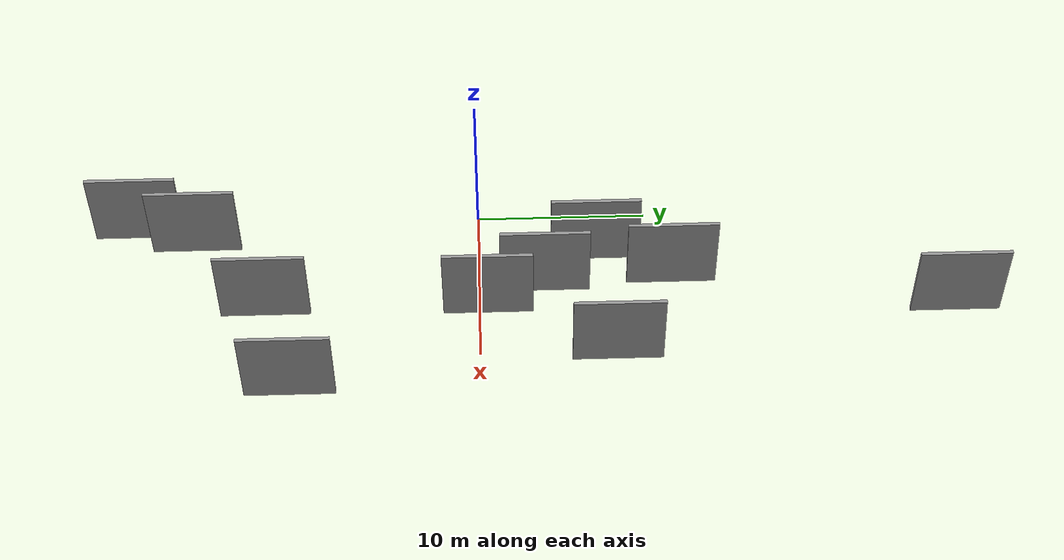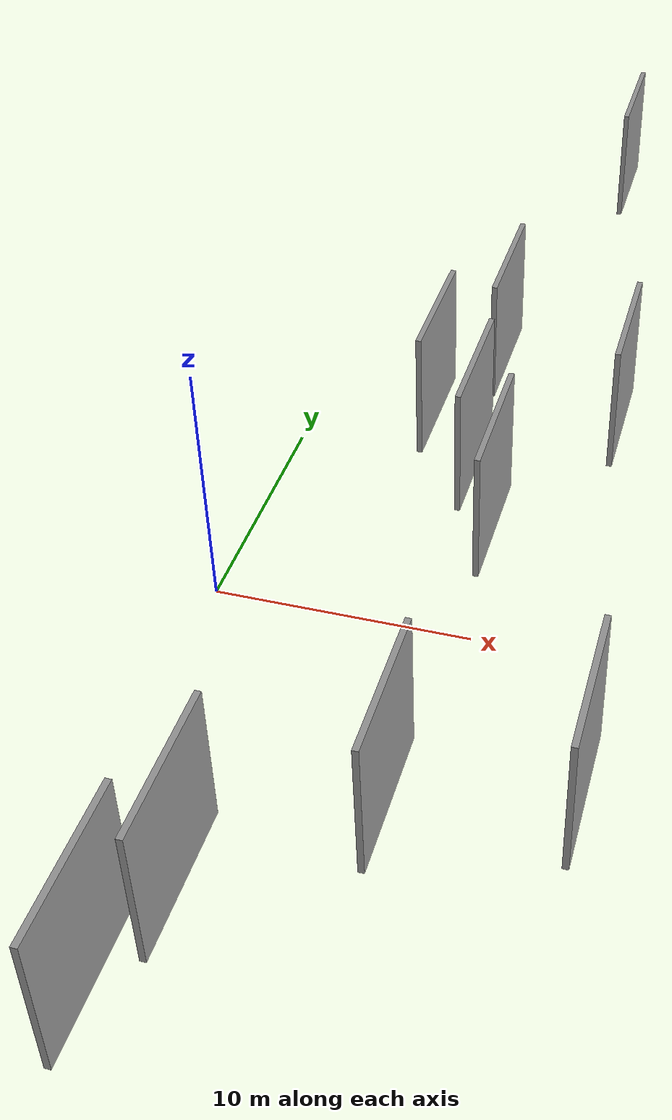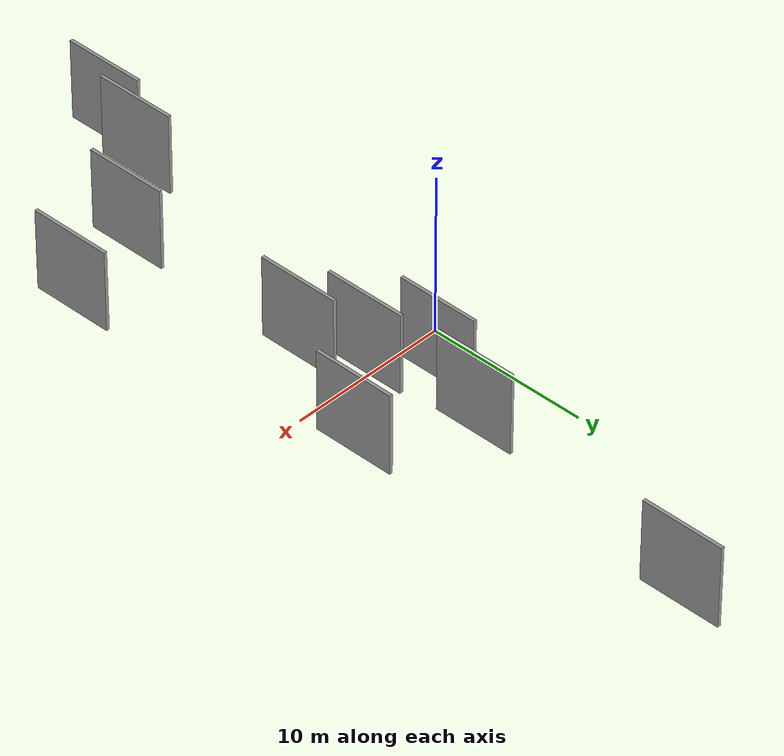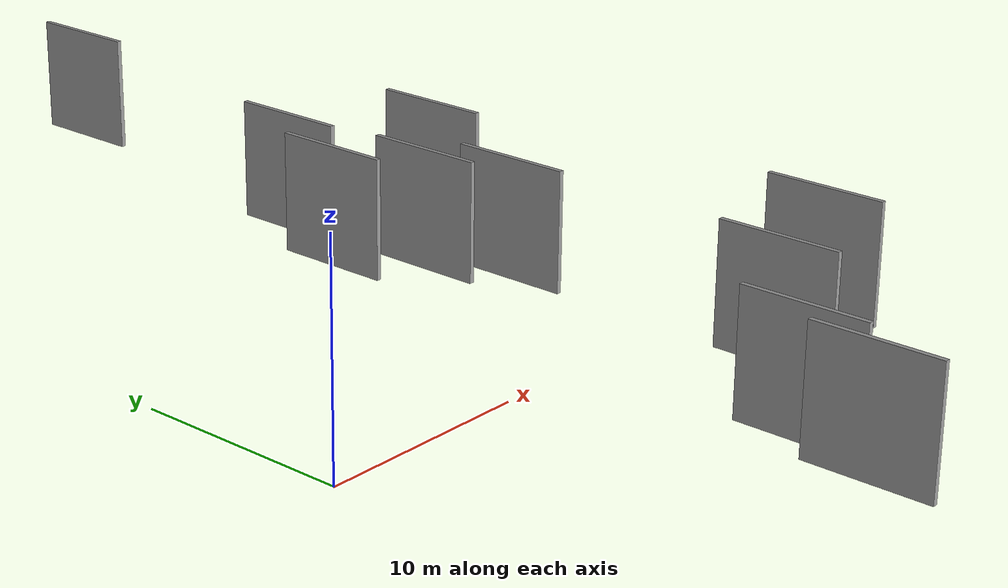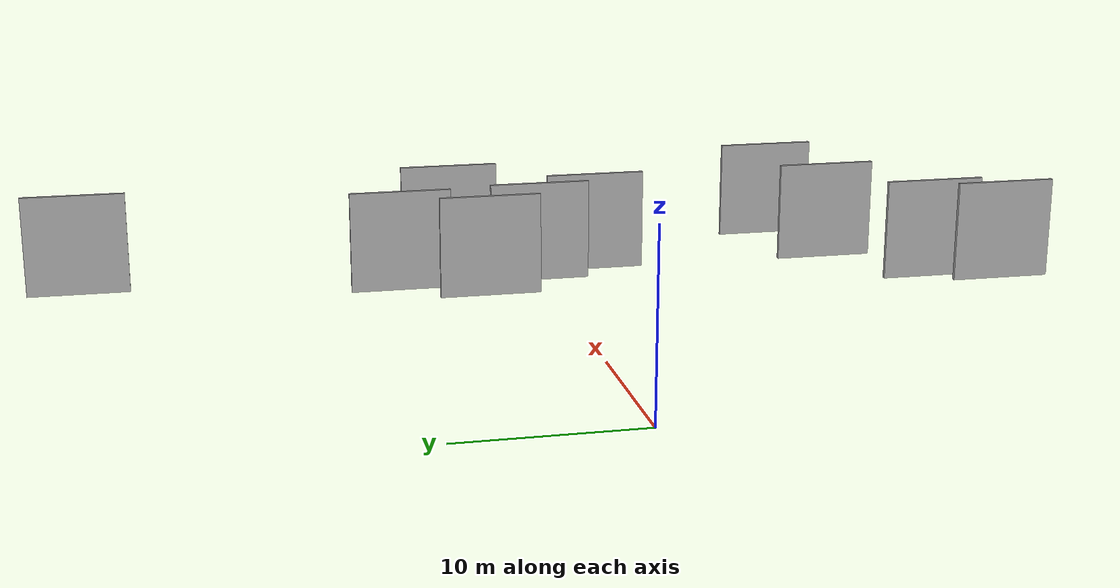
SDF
<sdf version="1.6">
 <world name="default">
  <scene>
   <sky><clouds><speed>12</speed></clouds></sky>
   <ambient>0.4 0.4 0.4 1</ambient>
   <background>0.7 0.7 0.7 1</background>
   <shadows>1</shadows>
  </scene>
  <gravity>0 0 -9.8066</gravity>
  <magnetic_field>6e-06 2.3e-05 -4.2e-05</magnetic_field>
  <physics default="0" name="default_physics" type="ode">
   <ode>
    <solver>
     <type>quick</type>
     <iters>10</iters>
     <sor>1.0</sor>
     <use_dynamic_moi_rescaling>0</use_dynamic_moi_rescaling>
    </solver>
    <constraints>
     <cfm>0</cfm>
     <erp>0.2</erp>
     <contact_max_correcting_vel>100</contact_max_correcting_vel>
     <contact_surface_layer>0.001</contact_surface_layer>
    </constraints>
   </ode>
   <max_step_size>0.004</max_step_size>
   <real_time_factor>1</real_time_factor>
   <real_time_update_rate>250</real_time_update_rate>
  </physics>
  <light name="sun" type="directional">
   <pose>0 0 10 0 0 0</pose>
   <diffuse>0.8 0.8 0.8 1</diffuse>
   <specular>0.2 0.2 0.2 1</specular>
   <attenuation>
    <range>1000</range>
    <constant>0.9</constant>
    <linear>0.01</linear>
    <quadratic>0.001</quadratic>
   </attenuation>
   <direction>-0.5 0.1 -0.9</direction>
  </light>
  <model name="grey_wall_1">
   <static>1</static>
   <pose>10.5815 0.5620 5.0 0.000000 0.000000 1.570796</pose>
   <link name="link">
    <pose>0 0 2.50 0 0 0</pose>
    <collision name="collision"><geometry><box><size>5.00 0.2 5.00</size></box></geometry></collision>
    <visual name="visual">
     <cast_shadows>0</cast_shadows>
     <geometry><box><size>5.00 0.2 5.00</size></box></geometry>
     <material>
      <script>
       <uri>model://grey_wall/materials/scripts</uri>
       <uri>model://grey_wall/materials/textures</uri>
       <name>vrc/grey_wall</name>
      </script>
     </material>
    </visual>
   </link>
  </model>
  <model name="grey_wall_2">
   <static>1</static>
   <pose>4.7068 -19.2780 5.0 0.000000 0.000000 1.570796</pose>
   <link name="link">
    <pose>0 0 2.50 0 0 0</pose>
    <collision name="collision"><geometry><box><size>5.00 0.2 5.00</size></box></geometry></collision>
    <visual name="visual">
     <cast_shadows>0</cast_shadows>
     <geometry><box><size>5.00 0.2 5.00</size></box></geometry>
     <material>
      <script>
       <uri>model://grey_wall/materials/scripts</uri>
       <uri>model://grey_wall/materials/textures</uri>
       <name>vrc/grey_wall</name>
      </script>
     </material>
    </visual>
   </link>
  </model>
  <model name="grey_wall_3">
   <static>1</static>
   <pose>8.7280 10.8446 5.0 0.000000 0.000000 1.570796</pose>
   <link name="link">
    <pose>0 0 2.50 0 0 0</pose>
    <collision name="collision"><geometry><box><size>5.00 0.2 5.00</size></box></geometry></collision>
    <visual name="visual">
     <cast_shadows>0</cast_shadows>
     <geometry><box><size>5.00 0.2 5.00</size></box></geometry>
     <material>
      <script>
       <uri>model://grey_wall/materials/scripts</uri>
       <uri>model://grey_wall/materials/textures</uri>
       <name>vrc/grey_wall</name>
      </script>
     </material>
    </visual>
   </link>
  </model>
  <model name="grey_wall_4">
   <static>1</static>
   <pose>13.9308 7.6363 5.0 0.000000 0.000000 1.570796</pose>
   <link name="link">
    <pose>0 0 2.50 0 0 0</pose>
    <collision name="collision"><geometry><box><size>5.00 0.2 5.00</size></box></geometry></collision>
    <visual name="visual">
     <cast_shadows>0</cast_shadows>
     <geometry><box><size>5.00 0.2 5.00</size></box></geometry>
     <material>
      <script>
       <uri>model://grey_wall/materials/scripts</uri>
       <uri>model://grey_wall/materials/textures</uri>
       <name>vrc/grey_wall</name>
      </script>
     </material>
    </visual>
   </link>
  </model>
  <model name="grey_wall_5">
   <static>1</static>
   <pose>11.1453 26.5851 5.0 0.000000 0.000000 1.570796</pose>
   <link name="link">
    <pose>0 0 2.50 0 0 0</pose>
    <collision name="collision"><geometry><box><size>5.00 0.2 5.00</size></box></geometry></collision>
    <visual name="visual">
     <cast_shadows>0</cast_shadows>
     <geometry><box><size>5.00 0.2 5.00</size></box></geometry>
     <material>
      <script>
       <uri>model://grey_wall/materials/scripts</uri>
       <uri>model://grey_wall/materials/textures</uri>
       <name>vrc/grey_wall</name>
      </script>
     </material>
    </visual>
   </link>
  </model>
  <model name="grey_wall_6">
   <static>1</static>
   <pose>10.4149 -11.8512 5.0 0.000000 0.000000 1.570796</pose>
   <link name="link">
    <pose>0 0 2.50 0 0 0</pose>
    <collision name="collision"><geometry><box><size>5.00 0.2 5.00</size></box></geometry></collision>
    <visual name="visual">
     <cast_shadows>0</cast_shadows>
     <geometry><box><size>5.00 0.2 5.00</size></box></geometry>
     <material>
      <script>
       <uri>model://grey_wall/materials/scripts</uri>
       <uri>model://grey_wall/materials/textures</uri>
       <name>vrc/grey_wall</name>
      </script>
     </material>
    </visual>
   </link>
  </model>
  <model name="grey_wall_7">
   <static>1</static>
   <pose>5.7469 -15.9391 5.0 0.000000 0.000000 1.570796</pose>
   <link name="link">
    <pose>0 0 2.50 0 0 0</pose>
    <collision name="collision"><geometry><box><size>5.00 0.2 5.00</size></box></geometry></collision>
    <visual name="visual">
     <cast_shadows>0</cast_shadows>
     <geometry><box><size>5.00 0.2 5.00</size></box></geometry>
     <material>
      <script>
       <uri>model://grey_wall/materials/scripts</uri>
       <uri>model://grey_wall/materials/textures</uri>
       <name>vrc/grey_wall</name>
      </script>
     </material>
    </visual>
   </link>
  </model>
  <model name="grey_wall_8">
   <static>1</static>
   <pose>9.1273 3.7492 5.0 0.000000 0.000000 1.570796</pose>
   <link name="link">
    <pose>0 0 2.50 0 0 0</pose>
    <collision name="collision"><geometry><box><size>5.00 0.2 5.00</size></box></geometry></collision>
    <visual name="visual">
     <cast_shadows>0</cast_shadows>
     <geometry><box><size>5.00 0.2 5.00</size></box></geometry>
     <material>
      <script>
       <uri>model://grey_wall/materials/scripts</uri>
       <uri>model://grey_wall/materials/textures</uri>
       <name>vrc/grey_wall</name>
      </script>
     </material>
    </visual>
   </link>
  </model>
  <model name="grey_wall_9">
   <static>1</static>
   <pose>15.8182 -10.2985 5.0 0.000000 0.000000 1.570796</pose>
   <link name="link">
    <pose>0 0 2.50 0 0 0</pose>
    <collision name="collision"><geometry><box><size>5.00 0.2 5.00</size></box></geometry></collision>
    <visual name="visual">
     <cast_shadows>0</cast_shadows>
     <geometry><box><size>5.00 0.2 5.00</size></box></geometry>
     <material>
      <script>
       <uri>model://grey_wall/materials/scripts</uri>
       <uri>model://grey_wall/materials/textures</uri>
       <name>vrc/grey_wall</name>
      </script>
     </material>
    </visual>
   </link>
  </model>
  <model name="grey_wall_10">
   <static>1</static>
   <pose>6.9343 6.6583 5.0 0.000000 0.000000 1.570796</pose>
   <link name="link">
    <pose>0 0 2.50 0 0 0</pose>
    <collision name="collision"><geometry><box><size>5.00 0.2 5.00</size></box></geometry></collision>
    <visual name="visual">
     <cast_shadows>0</cast_shadows>
     <geometry><box><size>5.00 0.2 5.00</size></box></geometry>
     <material>
      <script>
       <uri>model://grey_wall/materials/scripts</uri>
       <uri>model://grey_wall/materials/textures</uri>
       <name>vrc/grey_wall</name>
      </script>
     </material>
    </visual>
   </link>
  </model>
 </world>
</sdf>
